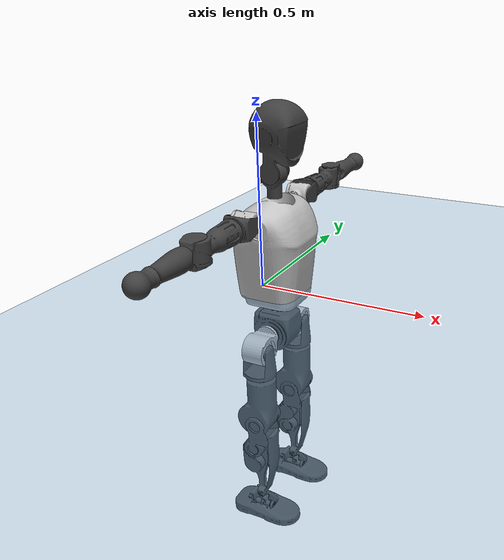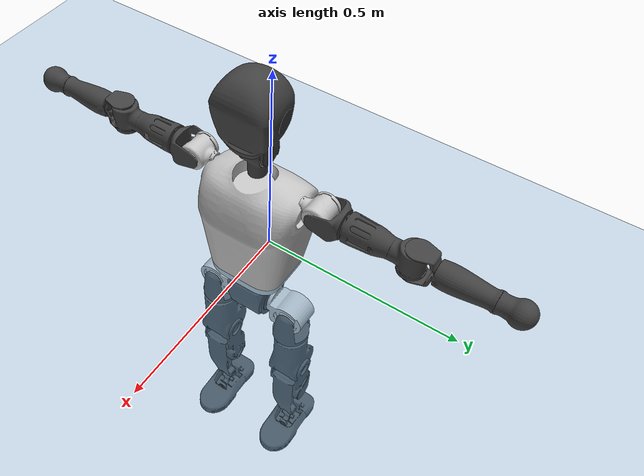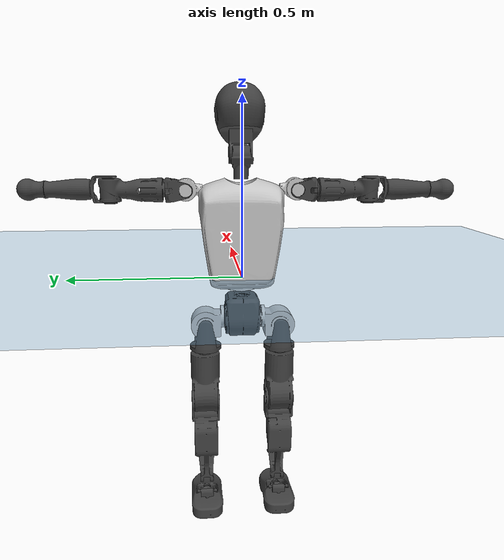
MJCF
<mujoco model="T1">
  <compiler angle="radian" assetdir="assets" balanceinertia="true" inertiafromgeom="false"/>

  <option timestep="0.005" density="1.2" viscosity="2e-05"/>

  <size nkey="1"/>

  <visual>
    <quality shadowsize="8192"/>
    <map shadowclip="0.5"/>
  </visual>

  <default>
    <default class="/">
      <joint armature="0.01" damping="0.01" frictionloss="0.1"/>
      <geom contype="0" conaffinity="0" group="1" solref="-1000 -80"/>
      <site size="0.01 0.005 0.005" group="5"/>
      <general forcelimited="true" biastype="affine" gainprm="25" biasprm="0 -25 -0.6"/>
      <default class="t1">
        <geom rgba="0.25 0.25 0.25 1"/>
        <default class="visual">
          <geom type="mesh" group="2"/>
        </default>
        <default class="collision">
          <geom group="3"/>
        </default>
        <default class="foot">
          <geom size="0.1115 0.05 0.015" type="box" condim="6" group="4" priority="1" solimp="0.015 1 0.015"/>
        </default>
        <default class="reward_collision_sphere">
          <geom group="5" rgba="1 0 0 1"/>
        </default>
      </default>
    </default>
  </default>

  <asset>
    <texture type="skybox" colorspace="auto" name="//unnamed_texture_0" builtin="gradient" rgb1="0.95 0.95 0.95" rgb2="0.95 0.95 0.95" width="100" height="600"/>
    <texture type="2d" colorspace="auto" name="texplane" builtin="checker" rgb1="0.345 0.575 0.748" rgb2="0.345 0.575 0.748" markrgb="1 1 1" width="512" height="512"/>
    <material name="MatPlane" class="/" texture="texplane" texuniform="true" texrepeat="2 2" specular="0.9"/>
    <mesh name="Trunk" class="/" file="Trunk.stl"/>
    <mesh name="H1" class="/" file="H1.stl"/>
    <mesh name="H2" class="/" file="H2.stl"/>
    <mesh name="AL1" class="/" file="AL1.stl"/>
    <mesh name="AL2" class="/" file="AL2.stl"/>
    <mesh name="AL3" class="/" file="AL3.stl"/>
    <mesh name="left_hand_link" class="/" file="left_hand_link.stl"/>
    <mesh name="AR1" class="/" file="AR1.stl"/>
    <mesh name="AR2" class="/" file="AR2.stl"/>
    <mesh name="AR3" class="/" file="AR3.stl"/>
    <mesh name="right_hand_link" class="/" file="right_hand_link.stl"/>
    <mesh name="Waist" class="/" file="Waist.stl"/>
    <mesh name="Hip_Pitch_Left" class="/" file="Hip_Pitch_Left.stl"/>
    <mesh name="Hip_Roll_Left" class="/" file="Hip_Roll_Left.stl"/>
    <mesh name="Hip_Yaw_Left" class="/" file="Hip_Yaw_Left.stl"/>
    <mesh name="Shank_Left" class="/" file="Shank_Left.stl"/>
    <mesh name="Ankle_Cross_Left" class="/" file="Ankle_Cross_Left.stl"/>
    <mesh name="left_foot_link" class="/" file="left_foot_link.stl"/>
    <mesh name="Hip_Pitch_Right" class="/" file="Hip_Pitch_Right.stl"/>
    <mesh name="Hip_Roll_Right" class="/" file="Hip_Roll_Right.stl"/>
    <mesh name="Hip_Yaw_Right" class="/" file="Hip_Yaw_Right.stl"/>
    <mesh name="Shank_Right" class="/" file="Shank_Right.stl"/>
    <mesh name="Ankle_Cross_Right" class="/" file="Ankle_Cross_Right.stl"/>
    <mesh name="right_foot_link" class="/" file="right_foot_link.stl"/>
  </asset>

  <worldbody>
    <geom name="floor" class="/" size="100 100 0.125" type="plane" group="0" material="MatPlane"/>
    <light name="toplight_shadow" class="/" pos="0 0 5" dir="0.0990148 0.0990148 -0.990148" type="directional" ambient="0.04 0.04 0.04" diffuse="0.55 0.55 0.55" specular="0.12 0.12 0.12"/>
    <light name="toplight_fill" class="/" pos="0 0 5" dir="0.0990148 0.0990148 -0.990148" type="directional" castshadow="false" ambient="0.04 0.04 0.04" diffuse="0.3 0.3 0.3" specular="0.08 0.08 0.08"/>
    <body name="trunk" childclass="t1" pos="-0.000545969 -0.000364724 -0.000303069" quat="0.999999 0.000574976 -0.00112475 0.000369416">
      <inertial pos="0.0426197 -0.00308752 0.120027" quat="0.99997 -0.00104556 -0.00754697 0.00107007" mass="11.5949" diaginertia="0.035344 0.0947252 0.105255"/>
      <joint name="//unnamed_joint_0" type="free" armature="0" damping="0" frictionloss="0"/>
      <geom name="//unnamed_geom_1" class="visual" rgba="0.76 0.76 0.76 1" mesh="Trunk"/>
      <geom name="//unnamed_geom_2" class="collision" size="0.0752357 0.100314 0.150471" pos="0.0494223 0 0.137114" type="box"/>
      <geom name="//unnamed_geom_3" class="reward_collision_sphere" size="0.115361" pos="0.0494223 0 0.114261"/>
      <geom name="//unnamed_geom_4" class="reward_collision_sphere" size="0.0150471" pos="0.0494223 0.0886643 0"/>
      <geom name="//unnamed_geom_5" class="reward_collision_sphere" size="0.0150471" pos="0.0494223 -0.0886643 0"/>
      <geom name="//unnamed_geom_6" class="reward_collision_sphere" size="0.0150471" pos="0.0494223 0.111613 0.20567"/>
      <geom name="//unnamed_geom_7" class="reward_collision_sphere" size="0.0150471" pos="0.0494223 -0.111613 0.20567"/>
      <site name="imu" pos="0.00802918 -0.0052774 -0.00809568" size="0.0100314"/>
      <camera name="track" pos="0 -2.08622 0" quat="0.707107 0.707107 0 0" mode="trackcom"/>
      <camera name="ego_camera" pos="0.100492 0 0.479898" quat="-0.5 -0.5 0.5 0.5"/>
      <body name="H1" pos="0.0505193 -5.64561e-05 0.276624" quat="1 -3.31817e-05 0.000226547 1.53627e-06">
        <inertial pos="-0.00231306 0.001027 0.0656152" quat="0.756219 -0.0186491 0.003655 0.654043" mass="0.443125" diaginertia="9.03531e-05 0.000264863 0.000277371"/>
        <joint name="AAHead_yaw" pos="0 0 0" axis="-0.00200236 -0.0125735 0.999919" stiffness="0.00909291" range="-1.55109 1.58426" armature="0.0094895" damping="0.00849574" frictionloss="0.101574"/>
        <geom name="//unnamed_geom_8" class="visual" mesh="H1"/>
        <body name="H2" pos="0.000362009 0.00243106 0.0714997" quat="1 0.000177323 -8.26945e-05 0.000388453">
          <inertial pos="0.00618769 0.0033713 0.112179" quat="0.988013 0.108075 -0.0779081 -0.0779802" mass="0.633073" diaginertia="0.000792689 0.00234065 0.00335385"/>
          <joint name="Head_pitch" pos="0 0 0" axis="-0.00104838 -0.999999 -0.000712731" range="-1.22818 0.35198" armature="0.00868734" damping="0.00819742" frictionloss="0.113422"/>
          <geom name="//unnamed_geom_9" class="visual" mesh="H2"/>
          <geom name="//unnamed_geom_10" class="collision" size="0.0802514" pos="0.00823706 0 0.125687"/>
          <geom name="//unnamed_geom_11" class="reward_collision_sphere" size="0.0902828" pos="0.0164741 0 0.114261"/>
        </body>
      </body>
      <body name="AL1" pos="0.0493575 0.11025 0.247776" quat="1 -2.89864e-05 0.000404546 -6.39666e-05">
        <inertial pos="-0.00334208 0.0467054 0.00124195" quat="0.504201 0.495723 -0.504259 0.495744" mass="0.539695" diaginertia="0.000522903 0.00160854 0.000561761"/>
        <joint name="Left_Shoulder_Pitch" pos="0 0 0" axis="0.000575798 0.9999 0.0141329" range="-3.29672 1.21435" armature="0.0104849" damping="0.00758751" frictionloss="0.0991822"/>
        <geom name="//unnamed_geom_12" class="visual" rgba="0.76 0.76 0.76 1" mesh="AL1"/>
        <body name="AL2" pos="-0.000468621 0.0482047 -0.00182586" quat="1 -7.01919e-06 -8.90942e-06 -1.14827e-05">
          <inertial pos="0.00376203 0.0391413 -0.00258588" quat="0.496461 0.506508 -0.486516 0.510174" mass="0.158334" diaginertia="0.000150165 0.00042443 0.000339904"/>
          <joint name="Left_Shoulder_Roll" pos="0 0 0" axis="-0.999993 -0.00123757 0.00345006" stiffness="0.000793781" range="-1.58092 1.7297" armature="0.0102137" damping="0.00235299" frictionloss="0.101472"/>
          <geom name="//unnamed_geom_13" class="visual" mesh="AL2"/>
          <body name="AL3" pos="0.00106639 0.0634267 0.0005758" quat="1 -5.40831e-05 0.00046492 9.36341e-05">
            <inertial pos="-0.00144072 0.0891611 -0.000218162" quat="0.713326 0.700774 0.00596874 0.00673779" mass="1.04005" diaginertia="0.00494944 0.0160038 0.00118252"/>
            <joint name="Left_Elbow_Pitch" pos="0 0 0" axis="0.00100665 -0.999999 -0.000108283" stiffness="0.000320534" range="-2.25563 2.28669" armature="0.0101353" damping="0.0235973" frictionloss="0.113744"/>
            <geom name="//unnamed_geom_14" class="visual" mesh="AL3"/>
            <geom name="//unnamed_geom_15" class="collision" size="0.0300943 0.0752357" pos="0 0.0521555 0" quat="0.707105 0.707108 0 0" type="cylinder"/>
            <geom name="//unnamed_geom_16" class="reward_collision_sphere" size="0.0361131"/>
            <body name="left_hand_link" pos="0.00300231 0.155238 0.00239285" quat="1 0.000309892 0.000110899 -0.000270215">
              <inertial pos="0.00238669 0.112889 -0.00196828" quat="0.71036 0.703835 0.00126686 -0.00180198" mass="0.32951" diaginertia="0.0030766 0.0103307 0.000430032"/>
              <joint name="Left_Elbow_Yaw" pos="0 0 0" axis="0.00358758 -0.000126738 0.999994" range="-2.43854 0.0236484" armature="0.0106775" damping="0.0131965" frictionloss="0.100375"/>
              <geom name="//unnamed_geom_17" class="visual" mesh="left_hand_link"/>
              <geom name="//unnamed_geom_18" class="collision" size="0.0300943 0.087775" pos="0 0.135604 0" quat="0.707105 0.707108 0 0" type="cylinder"/>
              <geom name="//unnamed_geom_19" class="reward_collision_sphere" size="0.0501571"/>
              <geom name="//unnamed_geom_20" class="reward_collision_sphere" size="0.03511" pos="0 0.114742 0"/>
              <geom name="//unnamed_geom_21" class="reward_collision_sphere" size="0.03511" pos="0 0.224269 0"/>
            </body>
          </body>
        </body>
      </body>
      <body name="AR1" pos="0.047305 -0.110827 0.249119" quat="0.999999 0.0012214 0.000143049 0.000166231">
        <inertial pos="-0.00130983 -0.0469897 -0.000166727" quat="0.504016 0.495425 -0.505265 0.495206" mass="0.554323" diaginertia="0.000522637 0.00164384 0.000592638"/>
        <joint name="Right_Shoulder_Pitch" pos="0 0 0" axis="0.00378252 -0.999993 -0.000321314" range="-1.20198 3.30437" armature="0.0104149" damping="0.00338843" frictionloss="0.100641"/>
        <geom name="//unnamed_geom_22" class="visual" rgba="0.76 0.76 0.76 1" mesh="AR1"/>
        <body name="AR2" pos="-0.000548985 -0.0485354 -0.00273706" quat="0.999999 0.000782319 0.00048105 0.000909411">
          <inertial pos="0.00364774 -0.0402048 0.000976085" quat="0.509787 0.486798 -0.508128 0.494925" mass="0.158037" diaginertia="0.000149084 0.00042083 0.000338338"/>
          <joint name="Right_Shoulder_Roll" pos="0 0 0" axis="-0.999996 0.0005814 -0.00262458" range="-1.73975 1.56849" armature="0.0100003" damping="0" frictionloss="0.10235"/>
          <geom name="//unnamed_geom_23" class="visual" mesh="AR2"/>
          <body name="AR3" pos="-0.00201733 -0.0635465 -0.000745114" quat="0.999999 0.000872868 0.000402165 -0.000868188">
            <inertial pos="0.00226319 -0.088651 -0.000103963" quat="0.706996 0.707203 -0.00191687 -0.00402689" mass="1.02769" diaginertia="0.00497837 0.0163039 0.00123087"/>
            <joint name="Right_Elbow_Pitch" pos="0 0 0" axis="-0.00329854 0.999994 -0.000718023" stiffness="0.000621042" range="-2.26057 2.2177" armature="0.0103984" damping="0.008998" frictionloss="0.101752"/>
            <geom name="//unnamed_geom_24" class="visual" mesh="AR3"/>
            <geom name="//unnamed_geom_25" class="collision" size="0.0300943 0.0752357" pos="0 -0.0521555 0" quat="0.707105 0.707108 0 0" type="cylinder"/>
            <geom name="//unnamed_geom_26" class="reward_collision_sphere" size="0.0361131"/>
            <body name="right_hand_link" pos="-0.001812 -0.154535 0.00179643" quat="0.999999 -0.000442855 -0.00044742 0.00104129">
              <inertial pos="0.00219501 -0.114947 -0.00152706" quat="0.705919 0.708291 -0.000794619 0.000951369" mass="0.315485" diaginertia="0.0028942 0.00954998 0.000418136"/>
              <joint name="Right_Elbow_Yaw" pos="0 0 0" axis="-0.00209394 -0.00525621 0.999984" range="0.00507179 2.38787" armature="0.010296" damping="0.00403954" frictionloss="0.0998767"/>
              <geom name="//unnamed_geom_27" class="visual" mesh="right_hand_link"/>
              <geom name="//unnamed_geom_28" class="collision" size="0.0300943 0.087775" pos="0 -0.135604 0" quat="0.707105 0.707108 0 0" type="cylinder"/>
              <geom name="//unnamed_geom_29" class="reward_collision_sphere" size="0.0501571"/>
              <geom name="//unnamed_geom_30" class="reward_collision_sphere" size="0.03511" pos="0 -0.114742 0"/>
              <geom name="//unnamed_geom_31" class="reward_collision_sphere" size="0.03511" pos="0 -0.224269 0"/>
            </body>
          </body>
        </body>
      </body>
      <body name="Waist" pos="0.0499357 -0.00310398 -0.131313" quat="1 0.000146422 0.00040067 -0.000305238">
        <inertial pos="0.000477051 0.00149974 0.008886" quat="0.984048 -0.00702194 -0.177756 -0.00195161" mass="2.49501" diaginertia="0.00203083 0.00639422 0.00887961"/>
        <joint name="Waist" pos="0 0 0" axis="-0.00177611 -0.00391043 0.999991" range="-1.57053 1.57675" armature="0.0100398" damping="0.000367223" frictionloss="0.10482"/>
        <geom name="//unnamed_geom_32" class="visual" mesh="Waist"/>
        <body name="Hip_Pitch_Left" pos="0.00273992 0.110622 -0.000373196" quat="1 -0.000232317 0.000338692 0.00031337">
          <inertial pos="0.00103191 -0.00788137 -0.0233784" quat="0.974764 0.222557 0.0174325 0.000323519" mass="1.03017" diaginertia="0.000683084 0.00179968 0.00244065"/>
          <joint name="Left_Hip_Pitch" pos="0 0 0" axis="-0.00439844 0.999981 -0.00438293" stiffness="0.00234743" range="-1.81841 1.62125" armature="0.0105039" damping="0" frictionloss="0.102186"/>
          <geom name="//unnamed_geom_33" class="visual" rgba="0.76 0.76 0.76 1" mesh="Hip_Pitch_Left"/>
          <body name="Hip_Roll_Left" pos="0.00293895 0.00109606 -0.0251459" quat="1 -8.64759e-06 0.000186502 6.5285e-05">
            <inertial pos="0.00173018 0.000391383 -0.0636951" quat="0.707728 -0.00489782 -0.00725736 0.706431" mass="0.396703" diaginertia="0.000695879 0.00187154 0.00100189"/>
            <joint name="Left_Hip_Roll" pos="0 0 0" axis="-0.999997 0.0021408 0.000932309" range="-1.56469 0.254732" armature="0.00953923" damping="0.0061279" frictionloss="0.0991568"/>
            <geom name="//unnamed_geom_34" class="visual" mesh="Hip_Roll_Left"/>
            <geom name="//unnamed_geom_35" class="reward_collision_sphere" size="0.0551729"/>
            <body name="Hip_Yaw_Left" pos="0.000192669 0.00221416 -0.0917736" quat="1 7.66792e-05 -5.93087e-05 -0.000133868">
              <inertial pos="-0.0063165 9.05157e-05 -0.102747" quat="0.698482 -0.0254623 -0.0398369 0.714064" mass="2.13794" diaginertia="0.00970069 0.030333 0.00509084"/>
              <joint name="Left_Hip_Yaw" pos="0 0 0" axis="0.00197491 0.00133719 -0.999997" range="-0.982769 1.05775" armature="0.0104914" damping="0.000370378" frictionloss="0.0985924"/>
              <geom name="//unnamed_geom_36" class="visual" mesh="Hip_Yaw_Left"/>
              <geom name="//unnamed_geom_37" class="collision" size="0.0501571 0.0802514" type="cylinder"/>
              <body name="Shank_Left" pos="-0.0112835 0.00101267 -0.155988" quat="1 -6.88833e-05 8.11253e-05 0.00010178">
                <inertial pos="-0.00464756 0.000349177 -0.144379" quat="0.997628 -0.00324986 -0.022238 0.0650618" mass="1.76726" diaginertia="0.0132943 0.0422558 0.00350702"/>
                <joint name="Left_Knee_Pitch" pos="0 0 0" axis="-0.00326114 0.999991 0.00277556" stiffness="0.00737348" range="0.0170767 2.33923" armature="0.010172" damping="0.0130361" frictionloss="0.105221"/>
                <geom name="//unnamed_geom_38" class="visual" mesh="Shank_Left"/>
                <geom name="//unnamed_geom_39" class="collision" size="0.0501571 0.0752357" pos="0 0 -0.137114" type="cylinder"/>
                <geom name="//unnamed_geom_40" class="reward_collision_sphere" size="0.0652043"/>
                <body name="Ankle_Cross_Left" pos="0.000198077 0.0003972 -0.322383" quat="1 0.000190664 0.000135711 0.000581591">
                  <inertial pos="-0.00551281 0.00273045 -0.00889011" quat="0.443778 0.549765 0.551926 0.442941" mass="0.0716369" diaginertia="1.10219e-05 3.04999e-05 2.21188e-05"/>
                  <joint name="Left_Ankle_Pitch" pos="0 0 0" axis="0.0100036 0.999947 -0.00256539" range="-0.899049 0.327998" armature="0.00877194" damping="0.00571621" frictionloss="0.104571"/>
                  <geom name="//unnamed_geom_41" class="visual" mesh="Ankle_Cross_Left"/>
                  <body name="left_foot_link" pos="0.000531142 0.000139879 -0.0116826" quat="0.999999 -0.000728827 6.41835e-05 -0.00119066">
                    <inertial pos="-0.00275842 0.000371491 -0.00989961" quat="-0.00307138 0.621503 -3.15121e-05 0.783406" mass="0.678282" diaginertia="0.00102891 0.0028926 0.00435598"/>
                    <joint name="Left_Ankle_Roll" pos="0 0 0" axis="-0.999999 -0.00076458 -0.00066024" range="-0.492318 0.387878" armature="0.0104228" damping="0.0132256" frictionloss="0.0872171"/>
                    <geom name="//unnamed_geom_42" class="visual" mesh="left_foot_link"/>
                    <geom name="left_foot" class="foot" size="0.105998 0.0485544 0.0156355" pos="0.00823706 0 -0.0171392"/>
                    <geom name="//unnamed_geom_44" class="reward_collision_sphere" size="0.0521634" pos="0.00823706 0 -0.0171392"/>
                    <geom name="//unnamed_geom_45" class="reward_collision_sphere" size="0.0300943" pos="0.078252 -0.0239915 -0.0171392"/>
                    <geom name="//unnamed_geom_46" class="reward_collision_sphere" size="0.0300943" pos="-0.0576594 -0.0239915 -0.0171392"/>
                    <site name="left_foot" class="foot" pos="0.00823706 0 -0.0171392" size="0.0100314"/>
                  </body>
                </body>
              </body>
            </body>
          </body>
        </body>
        <body name="Hip_Pitch_Right" pos="-0.00255383 -0.113163 0.000391703" quat="1 -0.000552496 -0.000627778 -0.000133902">
          <inertial pos="-8.03648e-05 0.00598972 -0.019337" quat="0.973457 -0.228297 0.0153083 -0.00533175" mass="1.027" diaginertia="0.000703589 0.00182958 0.00252799"/>
          <joint name="Right_Hip_Pitch" pos="0 0 0" axis="0.00464914 -0.999988 -0.00149051" stiffness="0.00160212" range="-1.56012 1.79775" armature="0.0108814" damping="0.00568633" frictionloss="0.101485"/>
          <geom name="//unnamed_geom_47" class="visual" rgba="0.76 0.76 0.76 1" mesh="Hip_Pitch_Right"/>
          <body name="Hip_Roll_Right" pos="0.00238561 -0.00262199 -0.0245446" quat="1 9.21461e-05 1.46014e-05 6.38342e-05">
            <inertial pos="0.000276939 -0.000603075 -0.0595264" quat="0.707284 -0.00540764 -0.00348965 0.7069" mass="0.405651" diaginertia="0.000668764 0.00194142 0.00101164"/>
            <joint name="Right_Hip_Roll" pos="0 0 0" axis="-0.999988 0.00247381 -0.00419318" stiffness="0.0103385" range="-0.200763 1.51807" armature="0.00947997" damping="0" frictionloss="0.086899"/>
            <geom name="//unnamed_geom_48" class="visual" mesh="Hip_Roll_Right"/>
            <geom name="//unnamed_geom_49" class="reward_collision_sphere" size="0.0551729"/>
            <body name="Hip_Yaw_Right" pos="0.00274056 -0.00202771 -0.0923415" quat="1 -7.27378e-05 -0.000303884 -0.000265327">
              <inertial pos="-0.00494672 -0.00189977 -0.100617" quat="0.721895 -0.0383157 -0.0304492 0.69027" mass="2.18005" diaginertia="0.00944049 0.031615 0.00488185"/>
              <joint name="Right_Hip_Yaw" pos="0 0 0" axis="-0.00932357 0.00435354 -0.999947" stiffness="0.00725358" range="-1.01527 0.990167" armature="0.00900249" damping="0.0166983" frictionloss="0.100928"/>
              <geom name="//unnamed_geom_50" class="visual" mesh="Hip_Yaw_Right"/>
              <geom name="//unnamed_geom_51" class="collision" size="0.0501571 0.0802514" type="cylinder"/>
              <body name="Shank_Right" pos="-0.00875243 0.000482003 -0.153727" quat="1 0.000688183 0.000224297 0.000227347">
                <inertial pos="-0.00474632 4.04751e-05 -0.140884" quat="0.998867 -0.0038648 -0.0201933 -0.0429213" mass="1.81725" diaginertia="0.0137604 0.0435091 0.00390185"/>
                <joint name="Right_Knee_Pitch" pos="0 0 0" axis="-0.00420992 -0.999984 0.00384956" range="-2.33279 0.0253829" armature="0.0101365" damping="0.0219855" frictionloss="0.0981071"/>
                <geom name="//unnamed_geom_52" class="visual" mesh="Shank_Right"/>
                <geom name="//unnamed_geom_53" class="collision" size="0.0501571 0.0752357" pos="0 0 -0.137114" type="cylinder"/>
                <geom name="//unnamed_geom_54" class="reward_collision_sphere" size="0.0652043"/>
                <body name="Ankle_Cross_Right" pos="0.000787374 6.96221e-05 -0.321802" quat="0.999999 -0.000834561 0.000260705 -0.000751336">
                  <inertial pos="-0.00285334 0.00247673 -0.00978784" quat="0.443566 0.551043 0.550644 0.443163" mass="0.0732943" diaginertia="1.06228e-05 3.15747e-05 2.15033e-05"/>
                  <joint name="Right_Ankle_Pitch" pos="0 0 0" axis="-0.0048667 -0.999978 -0.00442252" range="-0.401875 0.857114" armature="0.0101338" damping="0.00400638" frictionloss="0.103697"/>
                  <geom name="//unnamed_geom_55" class="visual" mesh="Ankle_Cross_Right"/>
                  <body name="right_foot_link" pos="0.00284168 0.00010245 -0.0132346" quat="1 -0.000197572 -0.000158279 4.97411e-05">
                    <inertial pos="-0.000204345 0.00207528 -0.0102901" quat="0.00011129 0.619628 -0.000368382 0.784896" mass="0.734192" diaginertia="0.00106612 0.00303264 0.00433911"/>
                    <joint name="Right_Ankle_Roll" pos="0 0 0" axis="-0.999975 0.00676438 -0.00184315" range="-0.421375 0.422202" armature="0.0102717" damping="0.00636216" frictionloss="0.0868891"/>
                    <geom name="//unnamed_geom_56" class="visual" mesh="right_foot_link"/>
                    <geom name="right_foot" class="foot" size="0.100209 0.0484096 0.0154531" pos="0.00823706 0 -0.0171392"/>
                    <geom name="//unnamed_geom_58" class="reward_collision_sphere" size="0.0401257"/>
                    <geom name="//unnamed_geom_59" class="reward_collision_sphere" size="0.0300943" pos="0.00823706 0 -0.0171392"/>
                    <geom name="//unnamed_geom_60" class="reward_collision_sphere" size="0.0300943" pos="0.078252 0.0239915 -0.0171392"/>
                    <geom name="//unnamed_geom_61" class="reward_collision_sphere" size="0.0300943" pos="-0.0576594 0.0239915 -0.0171392"/>
                    <site name="right_foot" class="foot" pos="0.00823706 0 -0.0171392" size="0.0100314"/>
                  </body>
                </body>
              </body>
            </body>
          </body>
        </body>
      </body>
    </body>
  </worldbody>

  <contact>
    <pair class="/" geom1="floor" geom2="left_foot" name="//unnamed_contact_0"/>
    <pair class="/" geom1="floor" geom2="right_foot" name="//unnamed_contact_1"/>
  </contact>

  <actuator>
    <general name="AAHead_yaw" class="/" joint="AAHead_yaw" forcerange="-7.26687 7.26687" gainprm="23.2881" biasprm="0 -23.2881 -0.592674"/>
    <general name="Head_pitch" class="/" joint="Head_pitch" forcerange="-6.78532 6.78532" gainprm="23.2881" biasprm="0 -23.2881 -0.592674"/>
    <general name="Left_Shoulder_Pitch" class="/" joint="Left_Shoulder_Pitch" forcerange="-16.2219 16.2219" gainprm="23.2881" biasprm="0 -23.2881 -0.592674"/>
    <general name="Left_Shoulder_Roll" class="/" joint="Left_Shoulder_Roll" forcerange="-18.1807 18.1807" gainprm="23.2881" biasprm="0 -23.2881 -0.592674"/>
    <general name="Left_Elbow_Pitch" class="/" joint="Left_Elbow_Pitch" forcerange="-17.9436 17.9436" gainprm="23.2881" biasprm="0 -23.2881 -0.592674"/>
    <general name="Left_Elbow_Yaw" class="/" joint="Left_Elbow_Yaw" forcerange="-18.0698 18.0698" gainprm="23.2881" biasprm="0 -23.2881 -0.592674"/>
    <general name="Right_Shoulder_Pitch" class="/" joint="Right_Shoulder_Pitch" forcerange="-18.7745 18.7745" gainprm="23.2881" biasprm="0 -23.2881 -0.592674"/>
    <general name="Right_Shoulder_Roll" class="/" joint="Right_Shoulder_Roll" forcerange="-18.4008 18.4008" gainprm="23.2881" biasprm="0 -23.2881 -0.592674"/>
    <general name="Right_Elbow_Pitch" class="/" joint="Right_Elbow_Pitch" forcerange="-17.6506 17.6506" gainprm="23.2881" biasprm="0 -23.2881 -0.592674"/>
    <general name="Right_Elbow_Yaw" class="/" joint="Right_Elbow_Yaw" forcerange="-17.5236 17.5236" gainprm="23.2881" biasprm="0 -23.2881 -0.592674"/>
    <general name="Waist" class="/" joint="Waist" forcerange="-29.6993 29.6993" gainprm="23.2881" biasprm="0 -23.2881 -0.592674"/>
    <general name="Left_Hip_Pitch" class="/" joint="Left_Hip_Pitch" forcerange="-44.5907 44.5907" gainprm="23.2881" biasprm="0 -23.2881 -0.592674"/>
    <general name="Left_Hip_Roll" class="/" joint="Left_Hip_Roll" forcerange="-29.6199 29.6199" gainprm="23.2881" biasprm="0 -23.2881 -0.592674"/>
    <general name="Left_Hip_Yaw" class="/" joint="Left_Hip_Yaw" forcerange="-29.5531 29.5531" gainprm="23.2881" biasprm="0 -23.2881 -0.592674"/>
    <general name="Left_Knee_Pitch" class="/" joint="Left_Knee_Pitch" forcerange="-58.9742 58.9742" gainprm="23.2881" biasprm="0 -23.2881 -0.592674"/>
    <general name="Left_Ankle_Pitch" class="/" joint="Left_Ankle_Pitch" forcerange="-22.0679 22.0679" gainprm="23.2881" biasprm="0 -23.2881 -0.592674"/>
    <general name="Left_Ankle_Roll" class="/" joint="Left_Ankle_Roll" forcerange="-13.6226 13.6226" gainprm="23.2881" biasprm="0 -23.2881 -0.592674"/>
    <general name="Right_Hip_Pitch" class="/" joint="Right_Hip_Pitch" forcerange="-46.1139 46.1139" gainprm="23.2881" biasprm="0 -23.2881 -0.592674"/>
    <general name="Right_Hip_Roll" class="/" joint="Right_Hip_Roll" forcerange="-32.9122 32.9122" gainprm="23.2881" biasprm="0 -23.2881 -0.592674"/>
    <general name="Right_Hip_Yaw" class="/" joint="Right_Hip_Yaw" forcerange="-27.9533 27.9533" gainprm="23.2881" biasprm="0 -23.2881 -0.592674"/>
    <general name="Right_Knee_Pitch" class="/" joint="Right_Knee_Pitch" forcerange="-56.6178 56.6178" gainprm="23.2881" biasprm="0 -23.2881 -0.592674"/>
    <general name="Right_Ankle_Pitch" class="/" joint="Right_Ankle_Pitch" forcerange="-19.6335 19.6335" gainprm="23.2881" biasprm="0 -23.2881 -0.592674"/>
    <general name="Right_Ankle_Roll" class="/" joint="Right_Ankle_Roll" forcerange="-16.356 16.356" gainprm="23.2881" biasprm="0 -23.2881 -0.592674"/>
  </actuator>

  <sensor>
    <gyro site="imu" name="imu_angular_velocity"/>
    <velocimeter site="imu" name="imu_linear_velocity"/>
    <framelinvel objtype="site" objname="left_foot" name="left_foot_global_linear_velocity"/>
    <framelinvel objtype="site" objname="right_foot" name="right_foot_global_linear_velocity"/>
  </sensor>

  <keyframe>
    <key name="home" qpos="0 0 0.6385 1 0 0 0 0 0 0 1.4 0 -0.4 0 -1.4 0 0.4 0 -0.4 0 0 0.8 -0.4 0 0.4 0 0 -0.8 0.4 0"/>
  </keyframe>
</mujoco>
